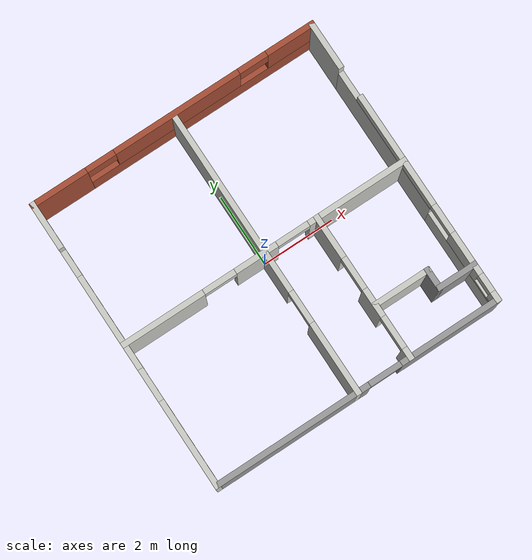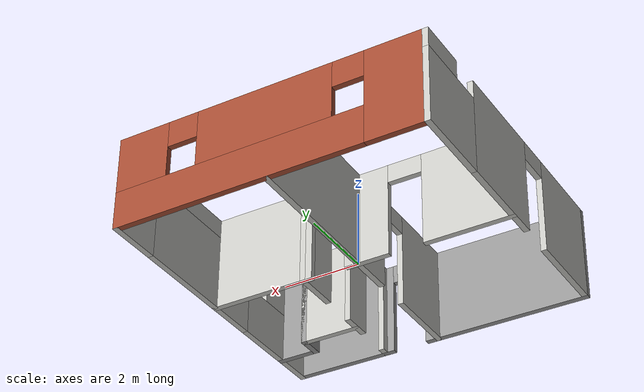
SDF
<?xml version='1.0'?>
<sdf version='1.6'>
  <model name='apartment_v2'>
    <pose frame=''>0 0 0 0 -0 0</pose>
    <link name='Wall_0'>
      <pose frame=''>-4 0 0 0 -0 1.5708</pose>
      <visual name='Wall_0_Visual_0'>
        <pose frame=''>-2.83835 0 1.25 0 -0 0</pose>
        <geometry>
          <box>
            <size>2.47329 0.15 2.5</size>
          </box>
        </geometry>
        <material>
          <script>
            <uri>file://media/materials/scripts/gazebo.material</uri>
            <name>Gazebo/CeilingTiled</name>
          </script>
          <ambient>1 1 1 1</ambient>
        </material>
        <meta>
          <layer>0</layer>
        </meta>
      </visual>
      <collision name='Wall_0_Collision_0'>
        <geometry>
          <box>
            <size>2.47329 0.15 2.5</size>
          </box>
        </geometry>
        <pose frame=''>-2.83835 0 1.25 0 -0 0</pose>
      </collision>
      <visual name='Wall_0_Visual_1'>
        <pose frame=''>0.623174 0 1.25 0 -0 0</pose>
        <geometry>
          <box>
            <size>2.64976 0.15 2.5</size>
          </box>
        </geometry>
        <material>
          <script>
            <uri>file://media/materials/scripts/gazebo.material</uri>
            <name>Gazebo/CeilingTiled</name>
          </script>
          <ambient>1 1 1 1</ambient>
        </material>
        <meta>
          <layer>0</layer>
        </meta>
      </visual>
      <collision name='Wall_0_Collision_1'>
        <geometry>
          <box>
            <size>2.64976 0.15 2.5</size>
          </box>
        </geometry>
        <pose frame=''>0.623174 0 1.25 0 -0 0</pose>
      </collision>
      <visual name='Wall_0_Visual_2'>
        <pose frame=''>3.01153 0 1 0 -0 0</pose>
        <geometry>
          <box>
            <size>2.12695 0.15 2</size>
          </box>
        </geometry>
        <material>
          <script>
            <uri>file://media/materials/scripts/gazebo.material</uri>
            <name>Gazebo/CeilingTiled</name>
          </script>
          <ambient>1 1 1 1</ambient>
        </material>
        <meta>
          <layer>0</layer>
        </meta>
      </visual>
      <collision name='Wall_0_Collision_2'>
        <geometry>
          <box>
            <size>2.12695 0.15 2</size>
          </box>
        </geometry>
        <pose frame=''>3.01153 0 1 0 -0 0</pose>
      </collision>
      <visual name='Wall_0_Visual_3'>
        <pose frame=''>-1.15171 0 2.25 0 -0 0</pose>
        <geometry>
          <box>
            <size>0.9 0.15 0.5</size>
          </box>
        </geometry>
        <material>
          <script>
            <uri>file://media/materials/scripts/gazebo.material</uri>
            <name>Gazebo/CeilingTiled</name>
          </script>
          <ambient>1 1 1 1</ambient>
        </material>
        <meta>
          <layer>0</layer>
        </meta>
      </visual>
      <collision name='Wall_0_Collision_3'>
        <geometry>
          <box>
            <size>0.9 0.15 0.5</size>
          </box>
        </geometry>
        <pose frame=''>-1.15171 0 2.25 0 -0 0</pose>
      </collision>
      <visual name='Wall_0_Visual_4'>
        <pose frame=''>3.41153 0 2.25 0 -0 0</pose>
        <geometry>
          <box>
            <size>1.32695 0.15 0.5</size>
          </box>
        </geometry>
        <material>
          <script>
            <uri>file://media/materials/scripts/gazebo.material</uri>
            <name>Gazebo/CeilingTiled</name>
          </script>
          <ambient>1 1 1 1</ambient>
        </material>
        <meta>
          <layer>0</layer>
        </meta>
      </visual>
      <collision name='Wall_0_Collision_4'>
        <geometry>
          <box>
            <size>1.32695 0.15 0.5</size>
          </box>
        </geometry>
        <pose frame=''>3.41153 0 2.25 0 -0 0</pose>
      </collision>
    </link>
    <link name='Wall_1'>
      <pose frame=''>0 4 0 0 -0 0</pose>
      <visual name='Wall_1_Visual_0'>
        <pose frame=''>-3.27694 0 1.25 0 -0 0</pose>
        <geometry>
          <box>
            <size>1.59612 0.15 2.5</size>
          </box>
        </geometry>
        <material>
          <script>
            <uri>file://media/materials/scripts/gazebo.material</uri>
            <name>Gazebo/Bricks</name>
          </script>
          <ambient>0.760784 0.662745 0.627451 1</ambient>
        </material>
        <meta>
          <layer>0</layer>
        </meta>
      </visual>
      <collision name='Wall_1_Collision_0'>
        <geometry>
          <box>
            <size>1.59612 0.15 2.5</size>
          </box>
        </geometry>
        <pose frame=''>-3.27694 0 1.25 0 -0 0</pose>
      </collision>
      <visual name='Wall_1_Visual_1'>
        <pose frame=''>0.79806 0 0.5 0 -0 0</pose>
        <geometry>
          <box>
            <size>6.55388 0.15 1</size>
          </box>
        </geometry>
        <material>
          <script>
            <uri>file://media/materials/scripts/gazebo.material</uri>
            <name>Gazebo/Bricks</name>
          </script>
          <ambient>0.760784 0.662745 0.627451 1</ambient>
        </material>
        <meta>
          <layer>0</layer>
        </meta>
      </visual>
      <collision name='Wall_1_Collision_1'>
        <geometry>
          <box>
            <size>6.55388 0.15 1</size>
          </box>
        </geometry>
        <pose frame=''>0.79806 0 0.5 0 -0 0</pose>
      </collision>
      <visual name='Wall_1_Visual_2'>
        <pose frame=''>0.103442 0 1.75 0 -0 0</pose>
        <geometry>
          <box>
            <size>3.56465 0.15 1.5</size>
          </box>
        </geometry>
        <material>
          <script>
            <uri>file://media/materials/scripts/gazebo.material</uri>
            <name>Gazebo/Bricks</name>
          </script>
          <ambient>0.760784 0.662745 0.627451 1</ambient>
        </material>
        <meta>
          <layer>0</layer>
        </meta>
      </visual>
      <collision name='Wall_1_Collision_2'>
        <geometry>
          <box>
            <size>3.56465 0.15 1.5</size>
          </box>
        </geometry>
        <pose frame=''>0.103442 0 1.75 0 -0 0</pose>
      </collision>
      <visual name='Wall_1_Visual_3'>
        <pose frame=''>3.38038 0 1.75 0 -0 0</pose>
        <geometry>
          <box>
            <size>1.38923 0.15 1.5</size>
          </box>
        </geometry>
        <material>
          <script>
            <uri>file://media/materials/scripts/gazebo.material</uri>
            <name>Gazebo/Bricks</name>
          </script>
          <ambient>0.760784 0.662745 0.627451 1</ambient>
        </material>
        <meta>
          <layer>0</layer>
        </meta>
      </visual>
      <collision name='Wall_1_Collision_3'>
        <geometry>
          <box>
            <size>1.38923 0.15 1.5</size>
          </box>
        </geometry>
        <pose frame=''>3.38038 0 1.75 0 -0 0</pose>
      </collision>
      <visual name='Wall_1_Visual_4'>
        <pose frame=''>-2.07888 0 2.15 0 -0 0</pose>
        <geometry>
          <box>
            <size>0.8 0.15 0.7</size>
          </box>
        </geometry>
        <material>
          <script>
            <uri>file://media/materials/scripts/gazebo.material</uri>
            <name>Gazebo/Bricks</name>
          </script>
          <ambient>0.760784 0.662745 0.627451 1</ambient>
        </material>
        <meta>
          <layer>0</layer>
        </meta>
      </visual>
      <collision name='Wall_1_Collision_4'>
        <geometry>
          <box>
            <size>0.8 0.15 0.7</size>
          </box>
        </geometry>
        <pose frame=''>-2.07888 0 2.15 0 -0 0</pose>
      </collision>
      <visual name='Wall_1_Visual_5'>
        <pose frame=''>2.28577 0 2.15 0 -0 0</pose>
        <geometry>
          <box>
            <size>0.8 0.15 0.7</size>
          </box>
        </geometry>
        <material>
          <script>
            <uri>file://media/materials/scripts/gazebo.material</uri>
            <name>Gazebo/Bricks</name>
          </script>
          <ambient>0.760784 0.662745 0.627451 1</ambient>
        </material>
        <meta>
          <layer>0</layer>
        </meta>
      </visual>
      <collision name='Wall_1_Collision_5'>
        <geometry>
          <box>
            <size>0.8 0.15 0.7</size>
          </box>
        </geometry>
        <pose frame=''>2.28577 0 2.15 0 -0 0</pose>
      </collision>
    </link>
    <link name='Wall_11'>
      <collision name='Wall_11_Collision'>
        <geometry>
          <box>
            <size>1.65 0.15 2.5</size>
          </box>
        </geometry>
        <pose frame=''>0 0 1.25 0 -0 0</pose>
      </collision>
      <visual name='Wall_11_Visual'>
        <pose frame=''>0 0 1.25 0 -0 0</pose>
        <geometry>
          <box>
            <size>1.65 0.15 2.5</size>
          </box>
        </geometry>
        <material>
          <script>
            <uri>file://media/materials/scripts/gazebo.material</uri>
            <name>Gazebo/CeilingTiled</name>
          </script>
          <ambient>1 1 1 1</ambient>
        </material>
        <meta>
          <layer>0</layer>
        </meta>
      </visual>
      <pose frame=''>2.25 -2.5 0 0 -0 0</pose>
    </link>
    <link name='Wall_12'>
      <collision name='Wall_12_Collision'>
        <geometry>
          <box>
            <size>0.65 0.15 2.5</size>
          </box>
        </geometry>
        <pose frame=''>0 0 1.25 0 -0 0</pose>
      </collision>
      <visual name='Wall_12_Visual'>
        <pose frame=''>0 0 1.25 0 -0 0</pose>
        <geometry>
          <box>
            <size>0.65 0.15 2.5</size>
          </box>
        </geometry>
        <material>
          <script>
            <uri>file://media/materials/scripts/gazebo.material</uri>
            <name>Gazebo/Grey</name>
          </script>
          <ambient>1 1 1 1</ambient>
        </material>
        <meta>
          <layer>0</layer>
        </meta>
      </visual>
      <pose frame=''>3 -2.75 0 0 0 -1.5708</pose>
    </link>
    <link name='Wall_13'>
      <collision name='Wall_13_Collision'>
        <geometry>
          <box>
            <size>1.15 0.15 2.5</size>
          </box>
        </geometry>
        <pose frame=''>0 0 1.25 0 -0 0</pose>
      </collision>
      <visual name='Wall_13_Visual'>
        <pose frame=''>0 0 1.25 0 -0 0</pose>
        <geometry>
          <box>
            <size>1.15 0.15 2.5</size>
          </box>
        </geometry>
        <material>
          <script>
            <uri>file://media/materials/scripts/gazebo.material</uri>
            <name>Gazebo/Grey</name>
          </script>
          <ambient>1 1 1 1</ambient>
        </material>
        <meta>
          <layer>0</layer>
        </meta>
      </visual>
      <pose frame=''>3.5 -3 0 0 -0 0</pose>
    </link>
    <link name='Wall_2'>
      <pose frame=''>4 0 0 0 0 -1.5708</pose>
      <visual name='Wall_2_Visual_0'>
        <pose frame=''>-3.39141 0 1.25 0 -0 0</pose>
        <geometry>
          <box>
            <size>1.36717 0.15 2.5</size>
          </box>
        </geometry>
        <material>
          <script>
            <uri>file://media/materials/scripts/gazebo.material</uri>
            <name>Gazebo/CeilingTiled</name>
          </script>
          <ambient>1 0.764706 0.305882 1</ambient>
        </material>
        <meta>
          <layer>0</layer>
        </meta>
      </visual>
      <collision name='Wall_2_Collision_0'>
        <geometry>
          <box>
            <size>1.36717 0.15 2.5</size>
          </box>
        </geometry>
        <pose frame=''>-3.39141 0 1.25 0 -0 0</pose>
      </collision>
      <visual name='Wall_2_Visual_1'>
        <pose frame=''>-0.716584 0 1 0 -0 0</pose>
        <geometry>
          <box>
            <size>3.98249 0.15 2</size>
          </box>
        </geometry>
        <material>
          <script>
            <uri>file://media/materials/scripts/gazebo.material</uri>
            <name>Gazebo/CeilingTiled</name>
          </script>
          <ambient>1 0.764706 0.305882 1</ambient>
        </material>
        <meta>
          <layer>0</layer>
        </meta>
      </visual>
      <collision name='Wall_2_Collision_1'>
        <geometry>
          <box>
            <size>3.98249 0.15 2</size>
          </box>
        </geometry>
        <pose frame=''>-0.716584 0 1 0 -0 0</pose>
      </collision>
      <visual name='Wall_2_Visual_2'>
        <pose frame=''>2.67483 0 0.65 0 -0 0</pose>
        <geometry>
          <box>
            <size>2.80034 0.15 1.3</size>
          </box>
        </geometry>
        <material>
          <script>
            <uri>file://media/materials/scripts/gazebo.material</uri>
            <name>Gazebo/CeilingTiled</name>
          </script>
          <ambient>1 0.764706 0.305882 1</ambient>
        </material>
        <meta>
          <layer>0</layer>
        </meta>
      </visual>
      <collision name='Wall_2_Collision_2'>
        <geometry>
          <box>
            <size>2.80034 0.15 1.3</size>
          </box>
        </geometry>
        <pose frame=''>2.67483 0 0.65 0 -0 0</pose>
      </collision>
      <visual name='Wall_2_Visual_3'>
        <pose frame=''>2.67671 0 1.9 0 -0 0</pose>
        <geometry>
          <box>
            <size>1.20409 0.15 1.2</size>
          </box>
        </geometry>
        <material>
          <script>
            <uri>file://media/materials/scripts/gazebo.material</uri>
            <name>Gazebo/CeilingTiled</name>
          </script>
          <ambient>1 0.764706 0.305882 1</ambient>
        </material>
        <meta>
          <layer>0</layer>
        </meta>
      </visual>
      <collision name='Wall_2_Collision_3'>
        <geometry>
          <box>
            <size>1.20409 0.15 1.2</size>
          </box>
        </geometry>
        <pose frame=''>2.67671 0 1.9 0 -0 0</pose>
      </collision>
      <visual name='Wall_2_Visual_4'>
        <pose frame=''>3.67687 0 1.4 0 -0 0</pose>
        <geometry>
          <box>
            <size>0.796249 0.15 0.2</size>
          </box>
        </geometry>
        <material>
          <script>
            <uri>file://media/materials/scripts/gazebo.material</uri>
            <name>Gazebo/CeilingTiled</name>
          </script>
          <ambient>1 0.764706 0.305882 1</ambient>
        </material>
        <meta>
          <layer>0</layer>
        </meta>
      </visual>
      <collision name='Wall_2_Collision_4'>
        <geometry>
          <box>
            <size>0.796249 0.15 0.2</size>
          </box>
        </geometry>
        <pose frame=''>3.67687 0 1.4 0 -0 0</pose>
      </collision>
      <visual name='Wall_2_Visual_5'>
        <pose frame=''>3.92687 0 2 0 -0 0</pose>
        <geometry>
          <box>
            <size>0.296249 0.15 1</size>
          </box>
        </geometry>
        <material>
          <script>
            <uri>file://media/materials/scripts/gazebo.material</uri>
            <name>Gazebo/CeilingTiled</name>
          </script>
          <ambient>1 0.764706 0.305882 1</ambient>
        </material>
        <meta>
          <layer>0</layer>
        </meta>
      </visual>
      <collision name='Wall_2_Collision_5'>
        <geometry>
          <box>
            <size>0.296249 0.15 1</size>
          </box>
        </geometry>
        <pose frame=''>3.92687 0 2 0 -0 0</pose>
      </collision>
      <visual name='Wall_2_Visual_6'>
        <pose frame=''>3.52875 0 2.25 0 -0 0</pose>
        <geometry>
          <box>
            <size>0.5 0.15 0.5</size>
          </box>
        </geometry>
        <material>
          <script>
            <uri>file://media/materials/scripts/gazebo.material</uri>
            <name>Gazebo/CeilingTiled</name>
          </script>
          <ambient>1 0.764706 0.305882 1</ambient>
        </material>
        <meta>
          <layer>0</layer>
        </meta>
      </visual>
      <collision name='Wall_2_Collision_6'>
        <geometry>
          <box>
            <size>0.5 0.15 0.5</size>
          </box>
        </geometry>
        <pose frame=''>3.52875 0 2.25 0 -0 0</pose>
      </collision>
      <visual name='Wall_2_Visual_7'>
        <pose frame=''>-0.316584 0 2.25 0 -0 0</pose>
        <geometry>
          <box>
            <size>3.18249 0.15 0.5</size>
          </box>
        </geometry>
        <material>
          <script>
            <uri>file://media/materials/scripts/gazebo.material</uri>
            <name>Gazebo/CeilingTiled</name>
          </script>
          <ambient>1 0.764706 0.305882 1</ambient>
        </material>
        <meta>
          <layer>0</layer>
        </meta>
      </visual>
      <collision name='Wall_2_Collision_7'>
        <geometry>
          <box>
            <size>3.18249 0.15 0.5</size>
          </box>
        </geometry>
        <pose frame=''>-0.316584 0 2.25 0 -0 0</pose>
      </collision>
      <visual name='Wall_2_Visual_8'>
        <pose frame=''>1.67466 0 2.3 0 -0 0</pose>
        <geometry>
          <box>
            <size>0.8 0.15 0.4</size>
          </box>
        </geometry>
        <material>
          <script>
            <uri>file://media/materials/scripts/gazebo.material</uri>
            <name>Gazebo/CeilingTiled</name>
          </script>
          <ambient>1 0.764706 0.305882 1</ambient>
        </material>
        <meta>
          <layer>0</layer>
        </meta>
      </visual>
      <collision name='Wall_2_Collision_8'>
        <geometry>
          <box>
            <size>0.8 0.15 0.4</size>
          </box>
        </geometry>
        <pose frame=''>1.67466 0 2.3 0 -0 0</pose>
      </collision>
    </link>
    <link name='Wall_3'>
      <pose frame=''>0 -4 0 0 -0 3.14159</pose>
      <visual name='Wall_3_Visual_0'>
        <pose frame=''>-2.65112 0 1.25 0 -0 0</pose>
        <geometry>
          <box>
            <size>2.84775 0.15 2.5</size>
          </box>
        </geometry>
        <material>
          <script>
            <uri>file://media/materials/scripts/gazebo.material</uri>
            <name>Gazebo/Grey</name>
          </script>
          <ambient>1 1 1 1</ambient>
        </material>
        <meta>
          <layer>0</layer>
        </meta>
      </visual>
      <collision name='Wall_3_Collision_0'>
        <geometry>
          <box>
            <size>2.84775 0.15 2.5</size>
          </box>
        </geometry>
        <pose frame=''>-2.65112 0 1.25 0 -0 0</pose>
      </collision>
      <visual name='Wall_3_Visual_1'>
        <pose frame=''>1.87388 0 1.25 0 -0 0</pose>
        <geometry>
          <box>
            <size>4.40225 0.15 2.5</size>
          </box>
        </geometry>
        <material>
          <script>
            <uri>file://media/materials/scripts/gazebo.material</uri>
            <name>Gazebo/Grey</name>
          </script>
          <ambient>1 1 1 1</ambient>
        </material>
        <meta>
          <layer>0</layer>
        </meta>
      </visual>
      <collision name='Wall_3_Collision_1'>
        <geometry>
          <box>
            <size>4.40225 0.15 2.5</size>
          </box>
        </geometry>
        <pose frame=''>1.87388 0 1.25 0 -0 0</pose>
      </collision>
      <visual name='Wall_3_Visual_2'>
        <pose frame=''>-0.777247 0 2.25 0 -0 0</pose>
        <geometry>
          <box>
            <size>0.9 0.15 0.5</size>
          </box>
        </geometry>
        <material>
          <script>
            <uri>file://media/materials/scripts/gazebo.material</uri>
            <name>Gazebo/Grey</name>
          </script>
          <ambient>1 1 1 1</ambient>
        </material>
        <meta>
          <layer>0</layer>
        </meta>
      </visual>
      <collision name='Wall_3_Collision_2'>
        <geometry>
          <box>
            <size>0.9 0.15 0.5</size>
          </box>
        </geometry>
        <pose frame=''>-0.777247 0 2.25 0 -0 0</pose>
      </collision>
    </link>
    <link name='Wall_5'>
      <pose frame=''>0 0 0 0 0 -1.5708</pose>
      <visual name='Wall_5_Visual_0'>
        <pose frame=''>-1.47545 0 1.25 0 -0 0</pose>
        <geometry>
          <box>
            <size>5.19909 0.15 2.5</size>
          </box>
        </geometry>
        <material>
          <script>
            <uri>file://media/materials/scripts/gazebo.material</uri>
            <name>Gazebo/CeilingTiled</name>
          </script>
          <ambient>1 1 1 1</ambient>
        </material>
        <meta>
          <layer>0</layer>
        </meta>
      </visual>
      <collision name='Wall_5_Collision_0'>
        <geometry>
          <box>
            <size>5.19909 0.15 2.5</size>
          </box>
        </geometry>
        <pose frame=''>-1.47545 0 1.25 0 -0 0</pose>
      </collision>
      <visual name='Wall_5_Visual_1'>
        <pose frame=''>3.04955 0 1.25 0 -0 0</pose>
        <geometry>
          <box>
            <size>2.05091 0.15 2.5</size>
          </box>
        </geometry>
        <material>
          <script>
            <uri>file://media/materials/scripts/gazebo.material</uri>
            <name>Gazebo/CeilingTiled</name>
          </script>
          <ambient>1 1 1 1</ambient>
        </material>
        <meta>
          <layer>0</layer>
        </meta>
      </visual>
      <collision name='Wall_5_Collision_1'>
        <geometry>
          <box>
            <size>2.05091 0.15 2.5</size>
          </box>
        </geometry>
        <pose frame=''>3.04955 0 1.25 0 -0 0</pose>
      </collision>
      <visual name='Wall_5_Visual_2'>
        <pose frame=''>1.57409 0 2.25 0 -0 0</pose>
        <geometry>
          <box>
            <size>0.9 0.15 0.5</size>
          </box>
        </geometry>
        <material>
          <script>
            <uri>file://media/materials/scripts/gazebo.material</uri>
            <name>Gazebo/CeilingTiled</name>
          </script>
          <ambient>1 1 1 1</ambient>
        </material>
        <meta>
          <layer>0</layer>
        </meta>
      </visual>
      <collision name='Wall_5_Collision_2'>
        <geometry>
          <box>
            <size>0.9 0.15 0.5</size>
          </box>
        </geometry>
        <pose frame=''>1.57409 0 2.25 0 -0 0</pose>
      </collision>
    </link>
    <link name='Wall_7'>
      <pose frame=''>0 0 0 0 -0 0</pose>
      <visual name='Wall_7_Visual_0'>
        <pose frame=''>-2.90972 0 1.25 0 -0 0</pose>
        <geometry>
          <box>
            <size>2.33055 0.15 2.5</size>
          </box>
        </geometry>
        <material>
          <script>
            <uri>file://media/materials/scripts/gazebo.material</uri>
            <name>Gazebo/CeilingTiled</name>
          </script>
          <ambient>1 1 1 1</ambient>
        </material>
        <meta>
          <layer>0</layer>
        </meta>
      </visual>
      <collision name='Wall_7_Collision_0'>
        <geometry>
          <box>
            <size>2.33055 0.15 2.5</size>
          </box>
        </geometry>
        <pose frame=''>-2.90972 0 1.25 0 -0 0</pose>
      </collision>
      <visual name='Wall_7_Visual_1'>
        <pose frame=''>-0.248545 0 1.25 0 -0 0</pose>
        <geometry>
          <box>
            <size>1.19181 0.15 2.5</size>
          </box>
        </geometry>
        <material>
          <script>
            <uri>file://media/materials/scripts/gazebo.material</uri>
            <name>Gazebo/CeilingTiled</name>
          </script>
          <ambient>1 1 1 1</ambient>
        </material>
        <meta>
          <layer>0</layer>
        </meta>
      </visual>
      <collision name='Wall_7_Collision_1'>
        <geometry>
          <box>
            <size>1.19181 0.15 2.5</size>
          </box>
        </geometry>
        <pose frame=''>-0.248545 0 1.25 0 -0 0</pose>
      </collision>
      <visual name='Wall_7_Visual_2'>
        <pose frame=''>2.66118 0 1.25 0 -0 0</pose>
        <geometry>
          <box>
            <size>2.82764 0.15 2.5</size>
          </box>
        </geometry>
        <material>
          <script>
            <uri>file://media/materials/scripts/gazebo.material</uri>
            <name>Gazebo/CeilingTiled</name>
          </script>
          <ambient>1 1 1 1</ambient>
        </material>
        <meta>
          <layer>0</layer>
        </meta>
      </visual>
      <collision name='Wall_7_Collision_2'>
        <geometry>
          <box>
            <size>2.82764 0.15 2.5</size>
          </box>
        </geometry>
        <pose frame=''>2.66118 0 1.25 0 -0 0</pose>
      </collision>
      <visual name='Wall_7_Visual_3'>
        <pose frame=''>-1.29445 0 2.25 0 -0 0</pose>
        <geometry>
          <box>
            <size>0.9 0.15 0.5</size>
          </box>
        </geometry>
        <material>
          <script>
            <uri>file://media/materials/scripts/gazebo.material</uri>
            <name>Gazebo/CeilingTiled</name>
          </script>
          <ambient>1 1 1 1</ambient>
        </material>
        <meta>
          <layer>0</layer>
        </meta>
      </visual>
      <collision name='Wall_7_Collision_3'>
        <geometry>
          <box>
            <size>0.9 0.15 0.5</size>
          </box>
        </geometry>
        <pose frame=''>-1.29445 0 2.25 0 -0 0</pose>
      </collision>
      <visual name='Wall_7_Visual_4'>
        <pose frame=''>0.797361 0 2.25 0 -0 0</pose>
        <geometry>
          <box>
            <size>0.9 0.15 0.5</size>
          </box>
        </geometry>
        <material>
          <script>
            <uri>file://media/materials/scripts/gazebo.material</uri>
            <name>Gazebo/CeilingTiled</name>
          </script>
          <ambient>1 1 1 1</ambient>
        </material>
        <meta>
          <layer>0</layer>
        </meta>
      </visual>
      <collision name='Wall_7_Collision_4'>
        <geometry>
          <box>
            <size>0.9 0.15 0.5</size>
          </box>
        </geometry>
        <pose frame=''>0.797361 0 2.25 0 -0 0</pose>
      </collision>
    </link>
    <link name='Wall_9'>
      <pose frame=''>1.5 -2 0 0 0 -1.5708</pose>
      <visual name='Wall_9_Visual_0'>
        <pose frame=''>-1.4654 0 1.25 0 -0 0</pose>
        <geometry>
          <box>
            <size>1.21921 0.15 2.5</size>
          </box>
        </geometry>
        <material>
          <script>
            <uri>file://media/materials/scripts/gazebo.material</uri>
            <name>Gazebo/CeilingTiled</name>
          </script>
          <ambient>1 1 1 1</ambient>
        </material>
        <meta>
          <layer>0</layer>
        </meta>
      </visual>
      <collision name='Wall_9_Collision_0'>
        <geometry>
          <box>
            <size>1.21921 0.15 2.5</size>
          </box>
        </geometry>
        <pose frame=''>-1.4654 0 1.25 0 -0 0</pose>
      </collision>
      <visual name='Wall_9_Visual_1'>
        <pose frame=''>0.438976 0 1.25 0 -0 0</pose>
        <geometry>
          <box>
            <size>0.78954 0.15 2.5</size>
          </box>
        </geometry>
        <material>
          <script>
            <uri>file://media/materials/scripts/gazebo.material</uri>
            <name>Gazebo/CeilingTiled</name>
          </script>
          <ambient>1 1 1 1</ambient>
        </material>
        <meta>
          <layer>0</layer>
        </meta>
      </visual>
      <collision name='Wall_9_Collision_1'>
        <geometry>
          <box>
            <size>0.78954 0.15 2.5</size>
          </box>
        </geometry>
        <pose frame=''>0.438976 0 1.25 0 -0 0</pose>
      </collision>
      <visual name='Wall_9_Visual_2'>
        <pose frame=''>1.90437 0 1.25 0 -0 0</pose>
        <geometry>
          <box>
            <size>0.341254 0.15 2.5</size>
          </box>
        </geometry>
        <material>
          <script>
            <uri>file://media/materials/scripts/gazebo.material</uri>
            <name>Gazebo/CeilingTiled</name>
          </script>
          <ambient>1 1 1 1</ambient>
        </material>
        <meta>
          <layer>0</layer>
        </meta>
      </visual>
      <collision name='Wall_9_Collision_2'>
        <geometry>
          <box>
            <size>0.341254 0.15 2.5</size>
          </box>
        </geometry>
        <pose frame=''>1.90437 0 1.25 0 -0 0</pose>
      </collision>
      <visual name='Wall_9_Visual_3'>
        <pose frame=''>-0.405794 0 2.25 0 -0 0</pose>
        <geometry>
          <box>
            <size>0.9 0.15 0.5</size>
          </box>
        </geometry>
        <material>
          <script>
            <uri>file://media/materials/scripts/gazebo.material</uri>
            <name>Gazebo/CeilingTiled</name>
          </script>
          <ambient>1 1 1 1</ambient>
        </material>
        <meta>
          <layer>0</layer>
        </meta>
      </visual>
      <collision name='Wall_9_Collision_3'>
        <geometry>
          <box>
            <size>0.9 0.15 0.5</size>
          </box>
        </geometry>
        <pose frame=''>-0.405794 0 2.25 0 -0 0</pose>
      </collision>
      <visual name='Wall_9_Visual_4'>
        <pose frame=''>1.28375 0 2.25 0 -0 0</pose>
        <geometry>
          <box>
            <size>0.9 0.15 0.5</size>
          </box>
        </geometry>
        <material>
          <script>
            <uri>file://media/materials/scripts/gazebo.material</uri>
            <name>Gazebo/CeilingTiled</name>
          </script>
          <ambient>1 1 1 1</ambient>
        </material>
        <meta>
          <layer>0</layer>
        </meta>
      </visual>
      <collision name='Wall_9_Collision_4'>
        <geometry>
          <box>
            <size>0.9 0.15 0.5</size>
          </box>
        </geometry>
        <pose frame=''>1.28375 0 2.25 0 -0 0</pose>
      </collision>
    </link>
    <static>1</static>
  </model>
</sdf>
